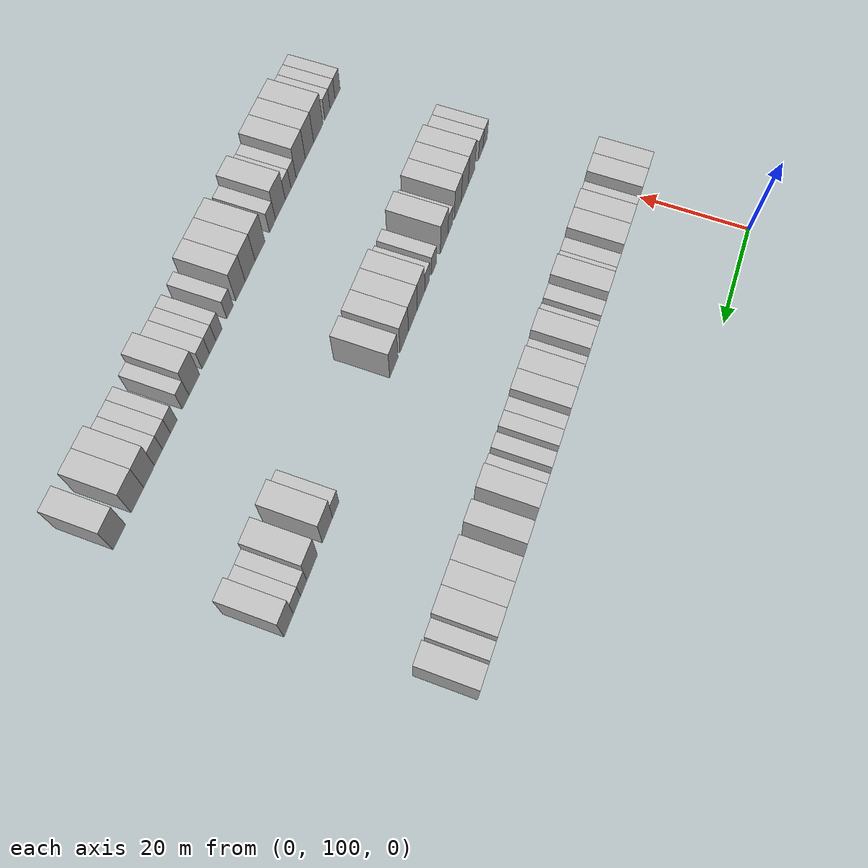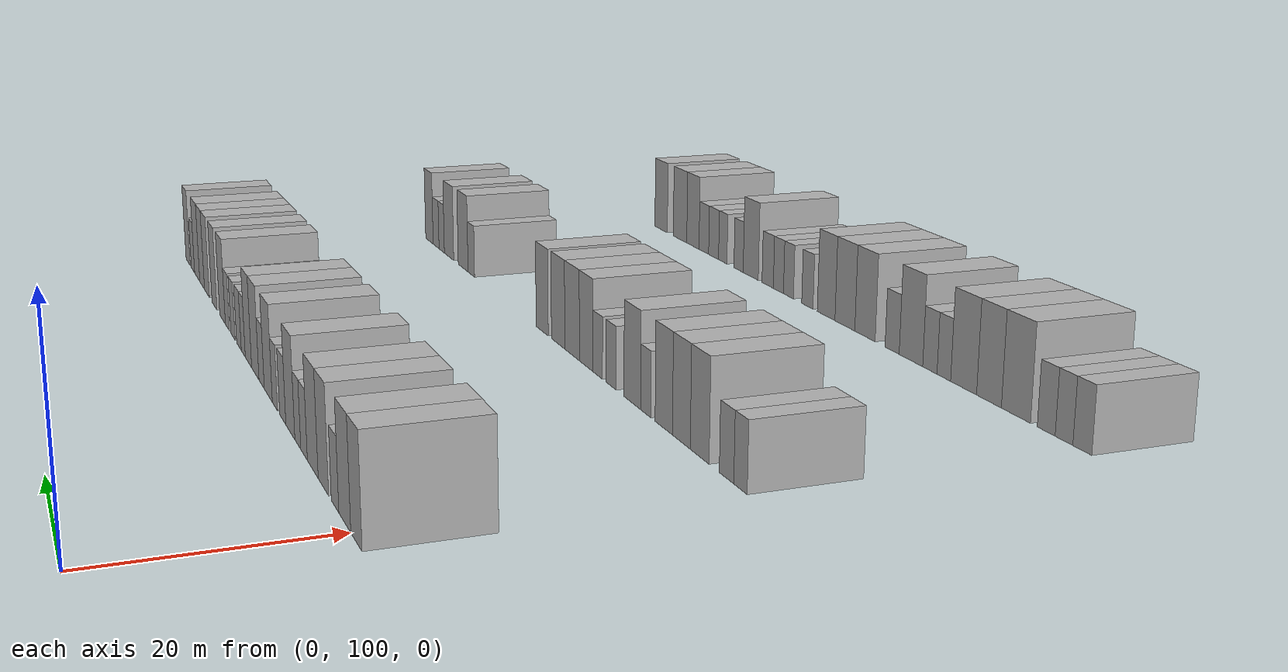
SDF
<sdf version="1.6">
 <world name="default">
  <model name="building_92">
   <static>1</static>
   <pose>25.0000 98.2462 0 0.000000 0.000000 0.000000</pose>
   <link name="link">
    <pose>0 0 4.50 0 0 0</pose>
    <collision name="collision"><geometry><box><size>10.0000 3.6863 9.0000</size></box></geometry></collision>
    <visual name="visual">
     <cast_shadows>0</cast_shadows>
     <geometry><box><size>10.0000 3.6863 9.0000</size></box></geometry>
     <material>
      <script>
       <uri>model://HANNAS_wall/materials/scripts</uri>
       <uri>model://HANNAS_wall/materials/textures</uri>
       <name>vrc/HANNAS_wall</name>
      </script>
     </material>
    </visual>
   </link>
  </model>
  <model name="building_93">
   <static>1</static>
   <pose>25.0000 102.1440 0 0.000000 0.000000 0.000000</pose>
   <link name="link">
    <pose>0 0 4.50 0 0 0</pose>
    <collision name="collision"><geometry><box><size>10.0000 4.1093 9.0000</size></box></geometry></collision>
    <visual name="visual">
     <cast_shadows>0</cast_shadows>
     <geometry><box><size>10.0000 4.1093 9.0000</size></box></geometry>
     <material>
      <script>
       <uri>model://HANNAS_wall/materials/scripts</uri>
       <uri>model://HANNAS_wall/materials/textures</uri>
       <name>vrc/HANNAS_wall</name>
      </script>
     </material>
    </visual>
   </link>
  </model>
  <model name="building_94">
   <static>1</static>
   <pose>25.0000 105.5680 0 0.000000 0.000000 0.000000</pose>
   <link name="link">
    <pose>0 0 3.00 0 0 0</pose>
    <collision name="collision"><geometry><box><size>10.0000 2.7387 6.0000</size></box></geometry></collision>
    <visual name="visual">
     <cast_shadows>0</cast_shadows>
     <geometry><box><size>10.0000 2.7387 6.0000</size></box></geometry>
     <material>
      <script>
       <uri>model://HANNAS_wall/materials/scripts</uri>
       <uri>model://HANNAS_wall/materials/textures</uri>
       <name>vrc/HANNAS_wall</name>
      </script>
     </material>
    </visual>
   </link>
  </model>
  <model name="building_95">
   <static>1</static>
   <pose>25.0000 109.9369 0 0.000000 0.000000 0.000000</pose>
   <link name="link">
    <pose>0 0 4.50 0 0 0</pose>
    <collision name="collision"><geometry><box><size>10.0000 3.9989 9.0000</size></box></geometry></collision>
    <visual name="visual">
     <cast_shadows>0</cast_shadows>
     <geometry><box><size>10.0000 3.9989 9.0000</size></box></geometry>
     <material>
      <script>
       <uri>model://HANNAS_wall/materials/scripts</uri>
       <uri>model://HANNAS_wall/materials/textures</uri>
       <name>vrc/HANNAS_wall</name>
      </script>
     </material>
    </visual>
   </link>
  </model>
  <model name="building_96">
   <static>1</static>
   <pose>25.0000 114.1396 0 0.000000 0.000000 0.000000</pose>
   <link name="link">
    <pose>0 0 4.50 0 0 0</pose>
    <collision name="collision"><geometry><box><size>10.0000 4.4066 9.0000</size></box></geometry></collision>
    <visual name="visual">
     <cast_shadows>0</cast_shadows>
     <geometry><box><size>10.0000 4.4066 9.0000</size></box></geometry>
     <material>
      <script>
       <uri>model://HANNAS_wall/materials/scripts</uri>
       <uri>model://HANNAS_wall/materials/textures</uri>
       <name>vrc/HANNAS_wall</name>
      </script>
     </material>
    </visual>
   </link>
  </model>
  <model name="building_97">
   <static>1</static>
   <pose>25.0000 117.7361 0 0.000000 0.000000 0.000000</pose>
   <link name="link">
    <pose>0 0 3.00 0 0 0</pose>
    <collision name="collision"><geometry><box><size>10.0000 2.7865 6.0000</size></box></geometry></collision>
    <visual name="visual">
     <cast_shadows>0</cast_shadows>
     <geometry><box><size>10.0000 2.7865 6.0000</size></box></geometry>
     <material>
      <script>
       <uri>model://HANNAS_wall/materials/scripts</uri>
       <uri>model://HANNAS_wall/materials/textures</uri>
       <name>vrc/HANNAS_wall</name>
      </script>
     </material>
    </visual>
   </link>
  </model>
  <model name="building_98">
   <static>1</static>
   <pose>25.0000 120.4450 0 0.000000 0.000000 0.000000</pose>
   <link name="link">
    <pose>0 0 3.00 0 0 0</pose>
    <collision name="collision"><geometry><box><size>10.0000 2.6313 6.0000</size></box></geometry></collision>
    <visual name="visual">
     <cast_shadows>0</cast_shadows>
     <geometry><box><size>10.0000 2.6313 6.0000</size></box></geometry>
     <material>
      <script>
       <uri>model://HANNAS_wall/materials/scripts</uri>
       <uri>model://HANNAS_wall/materials/textures</uri>
       <name>vrc/HANNAS_wall</name>
      </script>
     </material>
    </visual>
   </link>
  </model>
  <model name="building_99">
   <static>1</static>
   <pose>25.0000 123.8416 0 0.000000 0.000000 0.000000</pose>
   <link name="link">
    <pose>0 0 4.50 0 0 0</pose>
    <collision name="collision"><geometry><box><size>10.0000 4.1619 9.0000</size></box></geometry></collision>
    <visual name="visual">
     <cast_shadows>0</cast_shadows>
     <geometry><box><size>10.0000 4.1619 9.0000</size></box></geometry>
     <material>
      <script>
       <uri>model://HANNAS_wall/materials/scripts</uri>
       <uri>model://HANNAS_wall/materials/textures</uri>
       <name>vrc/HANNAS_wall</name>
      </script>
     </material>
    </visual>
   </link>
  </model>
  <model name="building_100">
   <static>1</static>
   <pose>25.0000 127.4074 0 0.000000 0.000000 0.000000</pose>
   <link name="link">
    <pose>0 0 3.00 0 0 0</pose>
    <collision name="collision"><geometry><box><size>10.0000 2.9698 6.0000</size></box></geometry></collision>
    <visual name="visual">
     <cast_shadows>0</cast_shadows>
     <geometry><box><size>10.0000 2.9698 6.0000</size></box></geometry>
     <material>
      <script>
       <uri>model://HANNAS_wall/materials/scripts</uri>
       <uri>model://HANNAS_wall/materials/textures</uri>
       <name>vrc/HANNAS_wall</name>
      </script>
     </material>
    </visual>
   </link>
  </model>
  <model name="building_101">
   <static>1</static>
   <pose>25.0000 131.2274 0 0.000000 0.000000 0.000000</pose>
   <link name="link">
    <pose>0 0 3.00 0 0 0</pose>
    <collision name="collision"><geometry><box><size>10.0000 2.6701 6.0000</size></box></geometry></collision>
    <visual name="visual">
     <cast_shadows>0</cast_shadows>
     <geometry><box><size>10.0000 2.6701 6.0000</size></box></geometry>
     <material>
      <script>
       <uri>model://HANNAS_wall/materials/scripts</uri>
       <uri>model://HANNAS_wall/materials/textures</uri>
       <name>vrc/HANNAS_wall</name>
      </script>
     </material>
    </visual>
   </link>
  </model>
  <model name="building_102">
   <static>1</static>
   <pose>25.0000 134.6650 0 0.000000 0.000000 0.000000</pose>
   <link name="link">
    <pose>0 0 4.50 0 0 0</pose>
    <collision name="collision"><geometry><box><size>10.0000 4.2051 9.0000</size></box></geometry></collision>
    <visual name="visual">
     <cast_shadows>0</cast_shadows>
     <geometry><box><size>10.0000 4.2051 9.0000</size></box></geometry>
     <material>
      <script>
       <uri>model://HANNAS_wall/materials/scripts</uri>
       <uri>model://HANNAS_wall/materials/textures</uri>
       <name>vrc/HANNAS_wall</name>
      </script>
     </material>
    </visual>
   </link>
  </model>
  <model name="building_103">
   <static>1</static>
   <pose>25.0000 138.2220 0 0.000000 0.000000 0.000000</pose>
   <link name="link">
    <pose>0 0 3.00 0 0 0</pose>
    <collision name="collision"><geometry><box><size>10.0000 2.9088 6.0000</size></box></geometry></collision>
    <visual name="visual">
     <cast_shadows>0</cast_shadows>
     <geometry><box><size>10.0000 2.9088 6.0000</size></box></geometry>
     <material>
      <script>
       <uri>model://HANNAS_wall/materials/scripts</uri>
       <uri>model://HANNAS_wall/materials/textures</uri>
       <name>vrc/HANNAS_wall</name>
      </script>
     </material>
    </visual>
   </link>
  </model>
  <model name="building_104">
   <static>1</static>
   <pose>25.0000 141.7715 0 0.000000 0.000000 0.000000</pose>
   <link name="link">
    <pose>0 0 4.50 0 0 0</pose>
    <collision name="collision"><geometry><box><size>10.0000 4.1902 9.0000</size></box></geometry></collision>
    <visual name="visual">
     <cast_shadows>0</cast_shadows>
     <geometry><box><size>10.0000 4.1902 9.0000</size></box></geometry>
     <material>
      <script>
       <uri>model://HANNAS_wall/materials/scripts</uri>
       <uri>model://HANNAS_wall/materials/textures</uri>
       <name>vrc/HANNAS_wall</name>
      </script>
     </material>
    </visual>
   </link>
  </model>
  <model name="building_105">
   <static>1</static>
   <pose>25.0000 145.7543 0 0.000000 0.000000 0.000000</pose>
   <link name="link">
    <pose>0 0 4.50 0 0 0</pose>
    <collision name="collision"><geometry><box><size>10.0000 3.7754 9.0000</size></box></geometry></collision>
    <visual name="visual">
     <cast_shadows>0</cast_shadows>
     <geometry><box><size>10.0000 3.7754 9.0000</size></box></geometry>
     <material>
      <script>
       <uri>model://HANNAS_wall/materials/scripts</uri>
       <uri>model://HANNAS_wall/materials/textures</uri>
       <name>vrc/HANNAS_wall</name>
      </script>
     </material>
    </visual>
   </link>
  </model>
  <model name="building_106">
   <static>1</static>
   <pose>25.0000 148.8828 0 0.000000 0.000000 0.000000</pose>
   <link name="link">
    <pose>0 0 3.00 0 0 0</pose>
    <collision name="collision"><geometry><box><size>10.0000 2.4815 6.0000</size></box></geometry></collision>
    <visual name="visual">
     <cast_shadows>0</cast_shadows>
     <geometry><box><size>10.0000 2.4815 6.0000</size></box></geometry>
     <material>
      <script>
       <uri>model://HANNAS_wall/materials/scripts</uri>
       <uri>model://HANNAS_wall/materials/textures</uri>
       <name>vrc/HANNAS_wall</name>
      </script>
     </material>
    </visual>
   </link>
  </model>
  <model name="building_107">
   <static>1</static>
   <pose>25.0000 151.5865 0 0.000000 0.000000 0.000000</pose>
   <link name="link">
    <pose>0 0 3.00 0 0 0</pose>
    <collision name="collision"><geometry><box><size>10.0000 2.9261 6.0000</size></box></geometry></collision>
    <visual name="visual">
     <cast_shadows>0</cast_shadows>
     <geometry><box><size>10.0000 2.9261 6.0000</size></box></geometry>
     <material>
      <script>
       <uri>model://HANNAS_wall/materials/scripts</uri>
       <uri>model://HANNAS_wall/materials/textures</uri>
       <name>vrc/HANNAS_wall</name>
      </script>
     </material>
    </visual>
   </link>
  </model>
  <model name="building_108">
   <static>1</static>
   <pose>25.0000 155.4279 0 0.000000 0.000000 0.000000</pose>
   <link name="link">
    <pose>0 0 3.00 0 0 0</pose>
    <collision name="collision"><geometry><box><size>10.0000 2.7566 6.0000</size></box></geometry></collision>
    <visual name="visual">
     <cast_shadows>0</cast_shadows>
     <geometry><box><size>10.0000 2.7566 6.0000</size></box></geometry>
     <material>
      <script>
       <uri>model://HANNAS_wall/materials/scripts</uri>
       <uri>model://HANNAS_wall/materials/textures</uri>
       <name>vrc/HANNAS_wall</name>
      </script>
     </material>
    </visual>
   </link>
  </model>
  <model name="building_109">
   <static>1</static>
   <pose>25.0000 159.2056 0 0.000000 0.000000 0.000000</pose>
   <link name="link">
    <pose>0 0 3.00 0 0 0</pose>
    <collision name="collision"><geometry><box><size>10.0000 2.7988 6.0000</size></box></geometry></collision>
    <visual name="visual">
     <cast_shadows>0</cast_shadows>
     <geometry><box><size>10.0000 2.7988 6.0000</size></box></geometry>
     <material>
      <script>
       <uri>model://HANNAS_wall/materials/scripts</uri>
       <uri>model://HANNAS_wall/materials/textures</uri>
       <name>vrc/HANNAS_wall</name>
      </script>
     </material>
    </visual>
   </link>
  </model>
  <model name="building_110">
   <static>1</static>
   <pose>25.0000 162.6018 0 0.000000 0.000000 0.000000</pose>
   <link name="link">
    <pose>0 0 4.50 0 0 0</pose>
    <collision name="collision"><geometry><box><size>10.0000 3.9937 9.0000</size></box></geometry></collision>
    <visual name="visual">
     <cast_shadows>0</cast_shadows>
     <geometry><box><size>10.0000 3.9937 9.0000</size></box></geometry>
     <material>
      <script>
       <uri>model://HANNAS_wall/materials/scripts</uri>
       <uri>model://HANNAS_wall/materials/textures</uri>
       <name>vrc/HANNAS_wall</name>
      </script>
     </material>
    </visual>
   </link>
  </model>
  <model name="building_111">
   <static>1</static>
   <pose>25.0000 168.4789 0 0.000000 0.000000 0.000000</pose>
   <link name="link">
    <pose>0 0 4.50 0 0 0</pose>
    <collision name="collision"><geometry><box><size>10.0000 3.7605 9.0000</size></box></geometry></collision>
    <visual name="visual">
     <cast_shadows>0</cast_shadows>
     <geometry><box><size>10.0000 3.7605 9.0000</size></box></geometry>
     <material>
      <script>
       <uri>model://HANNAS_wall/materials/scripts</uri>
       <uri>model://HANNAS_wall/materials/textures</uri>
       <name>vrc/HANNAS_wall</name>
      </script>
     </material>
    </visual>
   </link>
  </model>
  <model name="building_112">
   <static>1</static>
   <pose>25.0000 174.3198 0 0.000000 0.000000 0.000000</pose>
   <link name="link">
    <pose>0 0 4.50 0 0 0</pose>
    <collision name="collision"><geometry><box><size>10.0000 3.9211 9.0000</size></box></geometry></collision>
    <visual name="visual">
     <cast_shadows>0</cast_shadows>
     <geometry><box><size>10.0000 3.9211 9.0000</size></box></geometry>
     <material>
      <script>
       <uri>model://HANNAS_wall/materials/scripts</uri>
       <uri>model://HANNAS_wall/materials/textures</uri>
       <name>vrc/HANNAS_wall</name>
      </script>
     </material>
    </visual>
   </link>
  </model>
  <model name="building_113">
   <static>1</static>
   <pose>25.0000 178.2292 0 0.000000 0.000000 0.000000</pose>
   <link name="link">
    <pose>0 0 4.50 0 0 0</pose>
    <collision name="collision"><geometry><box><size>10.0000 3.8978 9.0000</size></box></geometry></collision>
    <visual name="visual">
     <cast_shadows>0</cast_shadows>
     <geometry><box><size>10.0000 3.8978 9.0000</size></box></geometry>
     <material>
      <script>
       <uri>model://HANNAS_wall/materials/scripts</uri>
       <uri>model://HANNAS_wall/materials/textures</uri>
       <name>vrc/HANNAS_wall</name>
      </script>
     </material>
    </visual>
   </link>
  </model>
  <model name="building_114">
   <static>1</static>
   <pose>25.0000 182.3680 0 0.000000 0.000000 0.000000</pose>
   <link name="link">
    <pose>0 0 4.50 0 0 0</pose>
    <collision name="collision"><geometry><box><size>10.0000 4.3797 9.0000</size></box></geometry></collision>
    <visual name="visual">
     <cast_shadows>0</cast_shadows>
     <geometry><box><size>10.0000 4.3797 9.0000</size></box></geometry>
     <material>
      <script>
       <uri>model://HANNAS_wall/materials/scripts</uri>
       <uri>model://HANNAS_wall/materials/textures</uri>
       <name>vrc/HANNAS_wall</name>
      </script>
     </material>
    </visual>
   </link>
  </model>
  <model name="building_115">
   <static>1</static>
   <pose>25.0000 186.0306 0 0.000000 0.000000 0.000000</pose>
   <link name="link">
    <pose>0 0 3.00 0 0 0</pose>
    <collision name="collision"><geometry><box><size>10.0000 2.9456 6.0000</size></box></geometry></collision>
    <visual name="visual">
     <cast_shadows>0</cast_shadows>
     <geometry><box><size>10.0000 2.9456 6.0000</size></box></geometry>
     <material>
      <script>
       <uri>model://HANNAS_wall/materials/scripts</uri>
       <uri>model://HANNAS_wall/materials/textures</uri>
       <name>vrc/HANNAS_wall</name>
      </script>
     </material>
    </visual>
   </link>
  </model>
  <model name="building_116">
   <static>1</static>
   <pose>25.0000 190.3924 0 0.000000 0.000000 0.000000</pose>
   <link name="link">
    <pose>0 0 4.50 0 0 0</pose>
    <collision name="collision"><geometry><box><size>10.0000 3.7781 9.0000</size></box></geometry></collision>
    <visual name="visual">
     <cast_shadows>0</cast_shadows>
     <geometry><box><size>10.0000 3.7781 9.0000</size></box></geometry>
     <material>
      <script>
       <uri>model://HANNAS_wall/materials/scripts</uri>
       <uri>model://HANNAS_wall/materials/textures</uri>
       <name>vrc/HANNAS_wall</name>
      </script>
     </material>
    </visual>
   </link>
  </model>
  <model name="building_225">
   <static>1</static>
   <pose>55.0000 98.4462 0 0.000000 0.000000 0.000000</pose>
   <link name="link">
    <pose>0 0 3.00 0 0 0</pose>
    <collision name="collision"><geometry><box><size>10.0000 2.4559 6.0000</size></box></geometry></collision>
    <visual name="visual">
     <cast_shadows>0</cast_shadows>
     <geometry><box><size>10.0000 2.4559 6.0000</size></box></geometry>
     <material>
      <script>
       <uri>model://HANNAS_wall/materials/scripts</uri>
       <uri>model://HANNAS_wall/materials/textures</uri>
       <name>vrc/HANNAS_wall</name>
      </script>
     </material>
    </visual>
   </link>
  </model>
  <model name="building_226">
   <static>1</static>
   <pose>55.0000 101.0471 0 0.000000 0.000000 0.000000</pose>
   <link name="link">
    <pose>0 0 3.00 0 0 0</pose>
    <collision name="collision"><geometry><box><size>10.0000 2.7459 6.0000</size></box></geometry></collision>
    <visual name="visual">
     <cast_shadows>0</cast_shadows>
     <geometry><box><size>10.0000 2.7459 6.0000</size></box></geometry>
     <material>
      <script>
       <uri>model://HANNAS_wall/materials/scripts</uri>
       <uri>model://HANNAS_wall/materials/textures</uri>
       <name>vrc/HANNAS_wall</name>
      </script>
     </material>
    </visual>
   </link>
  </model>
  <model name="building_227">
   <static>1</static>
   <pose>55.0000 106.3404 0 0.000000 0.000000 0.000000</pose>
   <link name="link">
    <pose>0 0 4.50 0 0 0</pose>
    <collision name="collision"><geometry><box><size>10.0000 3.8407 9.0000</size></box></geometry></collision>
    <visual name="visual">
     <cast_shadows>0</cast_shadows>
     <geometry><box><size>10.0000 3.8407 9.0000</size></box></geometry>
     <material>
      <script>
       <uri>model://HANNAS_wall/materials/scripts</uri>
       <uri>model://HANNAS_wall/materials/textures</uri>
       <name>vrc/HANNAS_wall</name>
      </script>
     </material>
    </visual>
   </link>
  </model>
  <model name="building_228">
   <static>1</static>
   <pose>55.0000 110.1692 0 0.000000 0.000000 0.000000</pose>
   <link name="link">
    <pose>0 0 4.50 0 0 0</pose>
    <collision name="collision"><geometry><box><size>10.0000 3.8169 9.0000</size></box></geometry></collision>
    <visual name="visual">
     <cast_shadows>0</cast_shadows>
     <geometry><box><size>10.0000 3.8169 9.0000</size></box></geometry>
     <material>
      <script>
       <uri>model://HANNAS_wall/materials/scripts</uri>
       <uri>model://HANNAS_wall/materials/textures</uri>
       <name>vrc/HANNAS_wall</name>
      </script>
     </material>
    </visual>
   </link>
  </model>
  <model name="building_229">
   <static>1</static>
   <pose>55.0000 114.0114 0 0.000000 0.000000 0.000000</pose>
   <link name="link">
    <pose>0 0 4.50 0 0 0</pose>
    <collision name="collision"><geometry><box><size>10.0000 3.8675 9.0000</size></box></geometry></collision>
    <visual name="visual">
     <cast_shadows>0</cast_shadows>
     <geometry><box><size>10.0000 3.8675 9.0000</size></box></geometry>
     <material>
      <script>
       <uri>model://HANNAS_wall/materials/scripts</uri>
       <uri>model://HANNAS_wall/materials/textures</uri>
       <name>vrc/HANNAS_wall</name>
      </script>
     </material>
    </visual>
   </link>
  </model>
  <model name="building_230">
   <static>1</static>
   <pose>55.0000 118.1484 0 0.000000 0.000000 0.000000</pose>
   <link name="link">
    <pose>0 0 3.00 0 0 0</pose>
    <collision name="collision"><geometry><box><size>10.0000 2.4064 6.0000</size></box></geometry></collision>
    <visual name="visual">
     <cast_shadows>0</cast_shadows>
     <geometry><box><size>10.0000 2.4064 6.0000</size></box></geometry>
     <material>
      <script>
       <uri>model://HANNAS_wall/materials/scripts</uri>
       <uri>model://HANNAS_wall/materials/textures</uri>
       <name>vrc/HANNAS_wall</name>
      </script>
     </material>
    </visual>
   </link>
  </model>
  <model name="building_231">
   <static>1</static>
   <pose>55.0000 121.3883 0 0.000000 0.000000 0.000000</pose>
   <link name="link">
    <pose>0 0 4.50 0 0 0</pose>
    <collision name="collision"><geometry><box><size>10.0000 4.0736 9.0000</size></box></geometry></collision>
    <visual name="visual">
     <cast_shadows>0</cast_shadows>
     <geometry><box><size>10.0000 4.0736 9.0000</size></box></geometry>
     <material>
      <script>
       <uri>model://HANNAS_wall/materials/scripts</uri>
       <uri>model://HANNAS_wall/materials/textures</uri>
       <name>vrc/HANNAS_wall</name>
      </script>
     </material>
    </visual>
   </link>
  </model>
  <model name="building_232">
   <static>1</static>
   <pose>55.0000 126.7086 0 0.000000 0.000000 0.000000</pose>
   <link name="link">
    <pose>0 0 3.00 0 0 0</pose>
    <collision name="collision"><geometry><box><size>10.0000 2.5669 6.0000</size></box></geometry></collision>
    <visual name="visual">
     <cast_shadows>0</cast_shadows>
     <geometry><box><size>10.0000 2.5669 6.0000</size></box></geometry>
     <material>
      <script>
       <uri>model://HANNAS_wall/materials/scripts</uri>
       <uri>model://HANNAS_wall/materials/textures</uri>
       <name>vrc/HANNAS_wall</name>
      </script>
     </material>
    </visual>
   </link>
  </model>
  <model name="building_233">
   <static>1</static>
   <pose>55.0000 130.2777 0 0.000000 0.000000 0.000000</pose>
   <link name="link">
    <pose>0 0 3.00 0 0 0</pose>
    <collision name="collision"><geometry><box><size>10.0000 2.5713 6.0000</size></box></geometry></collision>
    <visual name="visual">
     <cast_shadows>0</cast_shadows>
     <geometry><box><size>10.0000 2.5713 6.0000</size></box></geometry>
     <material>
      <script>
       <uri>model://HANNAS_wall/materials/scripts</uri>
       <uri>model://HANNAS_wall/materials/textures</uri>
       <name>vrc/HANNAS_wall</name>
      </script>
     </material>
    </visual>
   </link>
  </model>
  <model name="building_234">
   <static>1</static>
   <pose>55.0000 133.4779 0 0.000000 0.000000 0.000000</pose>
   <link name="link">
    <pose>0 0 4.50 0 0 0</pose>
    <collision name="collision"><geometry><box><size>10.0000 3.8293 9.0000</size></box></geometry></collision>
    <visual name="visual">
     <cast_shadows>0</cast_shadows>
     <geometry><box><size>10.0000 3.8293 9.0000</size></box></geometry>
     <material>
      <script>
       <uri>model://HANNAS_wall/materials/scripts</uri>
       <uri>model://HANNAS_wall/materials/textures</uri>
       <name>vrc/HANNAS_wall</name>
      </script>
     </material>
    </visual>
   </link>
  </model>
  <model name="building_235">
   <static>1</static>
   <pose>55.0000 137.5387 0 0.000000 0.000000 0.000000</pose>
   <link name="link">
    <pose>0 0 4.50 0 0 0</pose>
    <collision name="collision"><geometry><box><size>10.0000 4.2923 9.0000</size></box></geometry></collision>
    <visual name="visual">
     <cast_shadows>0</cast_shadows>
     <geometry><box><size>10.0000 4.2923 9.0000</size></box></geometry>
     <material>
      <script>
       <uri>model://HANNAS_wall/materials/scripts</uri>
       <uri>model://HANNAS_wall/materials/textures</uri>
       <name>vrc/HANNAS_wall</name>
      </script>
     </material>
    </visual>
   </link>
  </model>
  <model name="building_236">
   <static>1</static>
   <pose>55.0000 141.7364 0 0.000000 0.000000 0.000000</pose>
   <link name="link">
    <pose>0 0 4.50 0 0 0</pose>
    <collision name="collision"><geometry><box><size>10.0000 4.1030 9.0000</size></box></geometry></collision>
    <visual name="visual">
     <cast_shadows>0</cast_shadows>
     <geometry><box><size>10.0000 4.1030 9.0000</size></box></geometry>
     <material>
      <script>
       <uri>model://HANNAS_wall/materials/scripts</uri>
       <uri>model://HANNAS_wall/materials/textures</uri>
       <name>vrc/HANNAS_wall</name>
      </script>
     </material>
    </visual>
   </link>
  </model>
  <model name="building_237">
   <static>1</static>
   <pose>55.0000 146.7501 0 0.000000 0.000000 0.000000</pose>
   <link name="link">
    <pose>0 0 4.50 0 0 0</pose>
    <collision name="collision"><geometry><box><size>10.0000 3.9243 9.0000</size></box></geometry></collision>
    <visual name="visual">
     <cast_shadows>0</cast_shadows>
     <geometry><box><size>10.0000 3.9243 9.0000</size></box></geometry>
     <material>
      <script>
       <uri>model://HANNAS_wall/materials/scripts</uri>
       <uri>model://HANNAS_wall/materials/textures</uri>
       <name>vrc/HANNAS_wall</name>
      </script>
     </material>
    </visual>
   </link>
  </model>
  <model name="building_238">
   <static>1</static>
   <pose>55.0000 172.7889 0 0.000000 0.000000 0.000000</pose>
   <link name="link">
    <pose>0 0 3.00 0 0 0</pose>
    <collision name="collision"><geometry><box><size>10.0000 2.7178 6.0000</size></box></geometry></collision>
    <visual name="visual">
     <cast_shadows>0</cast_shadows>
     <geometry><box><size>10.0000 2.7178 6.0000</size></box></geometry>
     <material>
      <script>
       <uri>model://HANNAS_wall/materials/scripts</uri>
       <uri>model://HANNAS_wall/materials/textures</uri>
       <name>vrc/HANNAS_wall</name>
      </script>
     </material>
    </visual>
   </link>
  </model>
  <model name="building_239">
   <static>1</static>
   <pose>55.0000 176.2484 0 0.000000 0.000000 0.000000</pose>
   <link name="link">
    <pose>0 0 4.50 0 0 0</pose>
    <collision name="collision"><geometry><box><size>10.0000 4.2013 9.0000</size></box></geometry></collision>
    <visual name="visual">
     <cast_shadows>0</cast_shadows>
     <geometry><box><size>10.0000 4.2013 9.0000</size></box></geometry>
     <material>
      <script>
       <uri>model://HANNAS_wall/materials/scripts</uri>
       <uri>model://HANNAS_wall/materials/textures</uri>
       <name>vrc/HANNAS_wall</name>
      </script>
     </material>
    </visual>
   </link>
  </model>
  <model name="building_240">
   <static>1</static>
   <pose>55.0000 182.4731 0 0.000000 0.000000 0.000000</pose>
   <link name="link">
    <pose>0 0 4.50 0 0 0</pose>
    <collision name="collision"><geometry><box><size>10.0000 4.2481 9.0000</size></box></geometry></collision>
    <visual name="visual">
     <cast_shadows>0</cast_shadows>
     <geometry><box><size>10.0000 4.2481 9.0000</size></box></geometry>
     <material>
      <script>
       <uri>model://HANNAS_wall/materials/scripts</uri>
       <uri>model://HANNAS_wall/materials/textures</uri>
       <name>vrc/HANNAS_wall</name>
      </script>
     </material>
    </visual>
   </link>
  </model>
  <model name="building_241">
   <static>1</static>
   <pose>55.0000 185.8442 0 0.000000 0.000000 0.000000</pose>
   <link name="link">
    <pose>0 0 3.00 0 0 0</pose>
    <collision name="collision"><geometry><box><size>10.0000 2.4940 6.0000</size></box></geometry></collision>
    <visual name="visual">
     <cast_shadows>0</cast_shadows>
     <geometry><box><size>10.0000 2.4940 6.0000</size></box></geometry>
     <material>
      <script>
       <uri>model://HANNAS_wall/materials/scripts</uri>
       <uri>model://HANNAS_wall/materials/textures</uri>
       <name>vrc/HANNAS_wall</name>
      </script>
     </material>
    </visual>
   </link>
  </model>
  <model name="building_242">
   <static>1</static>
   <pose>55.0000 188.4919 0 0.000000 0.000000 0.000000</pose>
   <link name="link">
    <pose>0 0 3.00 0 0 0</pose>
    <collision name="collision"><geometry><box><size>10.0000 2.8014 6.0000</size></box></geometry></collision>
    <visual name="visual">
     <cast_shadows>0</cast_shadows>
     <geometry><box><size>10.0000 2.8014 6.0000</size></box></geometry>
     <material>
      <script>
       <uri>model://HANNAS_wall/materials/scripts</uri>
       <uri>model://HANNAS_wall/materials/textures</uri>
       <name>vrc/HANNAS_wall</name>
      </script>
     </material>
    </visual>
   </link>
  </model>
  <model name="building_243">
   <static>1</static>
   <pose>55.0000 191.7064 0 0.000000 0.000000 0.000000</pose>
   <link name="link">
    <pose>0 0 4.50 0 0 0</pose>
    <collision name="collision"><geometry><box><size>10.0000 3.6275 9.0000</size></box></geometry></collision>
    <visual name="visual">
     <cast_shadows>0</cast_shadows>
     <geometry><box><size>10.0000 3.6275 9.0000</size></box></geometry>
     <material>
      <script>
       <uri>model://HANNAS_wall/materials/scripts</uri>
       <uri>model://HANNAS_wall/materials/textures</uri>
       <name>vrc/HANNAS_wall</name>
      </script>
     </material>
    </visual>
   </link>
  </model>
  <model name="building_363">
   <static>1</static>
   <pose>85.0000 96.9276 0 0.000000 0.000000 0.000000</pose>
   <link name="link">
    <pose>0 0 3.00 0 0 0</pose>
    <collision name="collision"><geometry><box><size>10.0000 2.5934 6.0000</size></box></geometry></collision>
    <visual name="visual">
     <cast_shadows>0</cast_shadows>
     <geometry><box><size>10.0000 2.5934 6.0000</size></box></geometry>
     <material>
      <script>
       <uri>model://HANNAS_wall/materials/scripts</uri>
       <uri>model://HANNAS_wall/materials/textures</uri>
       <name>vrc/HANNAS_wall</name>
      </script>
     </material>
    </visual>
   </link>
  </model>
  <model name="building_364">
   <static>1</static>
   <pose>85.0000 99.4740 0 0.000000 0.000000 0.000000</pose>
   <link name="link">
    <pose>0 0 3.00 0 0 0</pose>
    <collision name="collision"><geometry><box><size>10.0000 2.4994 6.0000</size></box></geometry></collision>
    <visual name="visual">
     <cast_shadows>0</cast_shadows>
     <geometry><box><size>10.0000 2.4994 6.0000</size></box></geometry>
     <material>
      <script>
       <uri>model://HANNAS_wall/materials/scripts</uri>
       <uri>model://HANNAS_wall/materials/textures</uri>
       <name>vrc/HANNAS_wall</name>
      </script>
     </material>
    </visual>
   </link>
  </model>
  <model name="building_365">
   <static>1</static>
   <pose>85.0000 102.0286 0 0.000000 0.000000 0.000000</pose>
   <link name="link">
    <pose>0 0 3.00 0 0 0</pose>
    <collision name="collision"><geometry><box><size>10.0000 2.6097 6.0000</size></box></geometry></collision>
    <visual name="visual">
     <cast_shadows>0</cast_shadows>
     <geometry><box><size>10.0000 2.6097 6.0000</size></box></geometry>
     <material>
      <script>
       <uri>model://HANNAS_wall/materials/scripts</uri>
       <uri>model://HANNAS_wall/materials/textures</uri>
       <name>vrc/HANNAS_wall</name>
      </script>
     </material>
    </visual>
   </link>
  </model>
  <model name="building_366">
   <static>1</static>
   <pose>85.0000 106.5788 0 0.000000 0.000000 0.000000</pose>
   <link name="link">
    <pose>0 0 4.50 0 0 0</pose>
    <collision name="collision"><geometry><box><size>10.0000 4.4908 9.0000</size></box></geometry></collision>
    <visual name="visual">
     <cast_shadows>0</cast_shadows>
     <geometry><box><size>10.0000 4.4908 9.0000</size></box></geometry>
     <material>
      <script>
       <uri>model://HANNAS_wall/materials/scripts</uri>
       <uri>model://HANNAS_wall/materials/textures</uri>
       <name>vrc/HANNAS_wall</name>
      </script>
     </material>
    </visual>
   </link>
  </model>
  <model name="building_367">
   <static>1</static>
   <pose>85.0000 110.8342 0 0.000000 0.000000 0.000000</pose>
   <link name="link">
    <pose>0 0 4.50 0 0 0</pose>
    <collision name="collision"><geometry><box><size>10.0000 4.0201 9.0000</size></box></geometry></collision>
    <visual name="visual">
     <cast_shadows>0</cast_shadows>
     <geometry><box><size>10.0000 4.0201 9.0000</size></box></geometry>
     <material>
      <script>
       <uri>model://HANNAS_wall/materials/scripts</uri>
       <uri>model://HANNAS_wall/materials/textures</uri>
       <name>vrc/HANNAS_wall</name>
      </script>
     </material>
    </visual>
   </link>
  </model>
  <model name="building_368">
   <static>1</static>
   <pose>85.0000 115.0541 0 0.000000 0.000000 0.000000</pose>
   <link name="link">
    <pose>0 0 4.50 0 0 0</pose>
    <collision name="collision"><geometry><box><size>10.0000 4.4196 9.0000</size></box></geometry></collision>
    <visual name="visual">
     <cast_shadows>0</cast_shadows>
     <geometry><box><size>10.0000 4.4196 9.0000</size></box></geometry>
     <material>
      <script>
       <uri>model://HANNAS_wall/materials/scripts</uri>
       <uri>model://HANNAS_wall/materials/textures</uri>
       <name>vrc/HANNAS_wall</name>
      </script>
     </material>
    </visual>
   </link>
  </model>
  <model name="building_369">
   <static>1</static>
   <pose>85.0000 118.4673 0 0.000000 0.000000 0.000000</pose>
   <link name="link">
    <pose>0 0 3.00 0 0 0</pose>
    <collision name="collision"><geometry><box><size>10.0000 2.4068 6.0000</size></box></geometry></collision>
    <visual name="visual">
     <cast_shadows>0</cast_shadows>
     <geometry><box><size>10.0000 2.4068 6.0000</size></box></geometry>
     <material>
      <script>
       <uri>model://HANNAS_wall/materials/scripts</uri>
       <uri>model://HANNAS_wall/materials/textures</uri>
       <name>vrc/HANNAS_wall</name>
      </script>
     </material>
    </visual>
   </link>
  </model>
  <model name="building_370">
   <static>1</static>
   <pose>85.0000 120.9732 0 0.000000 0.000000 0.000000</pose>
   <link name="link">
    <pose>0 0 3.00 0 0 0</pose>
    <collision name="collision"><geometry><box><size>10.0000 2.6051 6.0000</size></box></geometry></collision>
    <visual name="visual">
     <cast_shadows>0</cast_shadows>
     <geometry><box><size>10.0000 2.6051 6.0000</size></box></geometry>
     <material>
      <script>
       <uri>model://HANNAS_wall/materials/scripts</uri>
       <uri>model://HANNAS_wall/materials/textures</uri>
       <name>vrc/HANNAS_wall</name>
      </script>
     </material>
    </visual>
   </link>
  </model>
  <model name="building_371">
   <static>1</static>
   <pose>85.0000 124.5020 0 0.000000 0.000000 0.000000</pose>
   <link name="link">
    <pose>0 0 4.50 0 0 0</pose>
    <collision name="collision"><geometry><box><size>10.0000 4.4524 9.0000</size></box></geometry></collision>
    <visual name="visual">
     <cast_shadows>0</cast_shadows>
     <geometry><box><size>10.0000 4.4524 9.0000</size></box></geometry>
     <material>
      <script>
       <uri>model://HANNAS_wall/materials/scripts</uri>
       <uri>model://HANNAS_wall/materials/textures</uri>
       <name>vrc/HANNAS_wall</name>
      </script>
     </material>
    </visual>
   </link>
  </model>
  <model name="building_372">
   <static>1</static>
   <pose>85.0000 128.1152 0 0.000000 0.000000 0.000000</pose>
   <link name="link">
    <pose>0 0 3.00 0 0 0</pose>
    <collision name="collision"><geometry><box><size>10.0000 2.7740 6.0000</size></box></geometry></collision>
    <visual name="visual">
     <cast_shadows>0</cast_shadows>
     <geometry><box><size>10.0000 2.7740 6.0000</size></box></geometry>
     <material>
      <script>
       <uri>model://HANNAS_wall/materials/scripts</uri>
       <uri>model://HANNAS_wall/materials/textures</uri>
       <name>vrc/HANNAS_wall</name>
      </script>
     </material>
    </visual>
   </link>
  </model>
  <model name="building_373">
   <static>1</static>
   <pose>85.0000 133.6269 0 0.000000 0.000000 0.000000</pose>
   <link name="link">
    <pose>0 0 4.50 0 0 0</pose>
    <collision name="collision"><geometry><box><size>10.0000 4.2493 9.0000</size></box></geometry></collision>
    <visual name="visual">
     <cast_shadows>0</cast_shadows>
     <geometry><box><size>10.0000 4.2493 9.0000</size></box></geometry>
     <material>
      <script>
       <uri>model://HANNAS_wall/materials/scripts</uri>
       <uri>model://HANNAS_wall/materials/textures</uri>
       <name>vrc/HANNAS_wall</name>
      </script>
     </material>
    </visual>
   </link>
  </model>
  <model name="building_374">
   <static>1</static>
   <pose>85.0000 137.9146 0 0.000000 0.000000 0.000000</pose>
   <link name="link">
    <pose>0 0 4.50 0 0 0</pose>
    <collision name="collision"><geometry><box><size>10.0000 4.3261 9.0000</size></box></geometry></collision>
    <visual name="visual">
     <cast_shadows>0</cast_shadows>
     <geometry><box><size>10.0000 4.3261 9.0000</size></box></geometry>
     <material>
      <script>
       <uri>model://HANNAS_wall/materials/scripts</uri>
       <uri>model://HANNAS_wall/materials/textures</uri>
       <name>vrc/HANNAS_wall</name>
      </script>
     </material>
    </visual>
   </link>
  </model>
  <model name="building_375">
   <static>1</static>
   <pose>85.0000 142.0823 0 0.000000 0.000000 0.000000</pose>
   <link name="link">
    <pose>0 0 4.50 0 0 0</pose>
    <collision name="collision"><geometry><box><size>10.0000 4.0094 9.0000</size></box></geometry></collision>
    <visual name="visual">
     <cast_shadows>0</cast_shadows>
     <geometry><box><size>10.0000 4.0094 9.0000</size></box></geometry>
     <material>
      <script>
       <uri>model://HANNAS_wall/materials/scripts</uri>
       <uri>model://HANNAS_wall/materials/textures</uri>
       <name>vrc/HANNAS_wall</name>
      </script>
     </material>
    </visual>
   </link>
  </model>
  <model name="building_376">
   <static>1</static>
   <pose>85.0000 146.4305 0 0.000000 0.000000 0.000000</pose>
   <link name="link">
    <pose>0 0 3.00 0 0 0</pose>
    <collision name="collision"><geometry><box><size>10.0000 2.6869 6.0000</size></box></geometry></collision>
    <visual name="visual">
     <cast_shadows>0</cast_shadows>
     <geometry><box><size>10.0000 2.6869 6.0000</size></box></geometry>
     <material>
      <script>
       <uri>model://HANNAS_wall/materials/scripts</uri>
       <uri>model://HANNAS_wall/materials/textures</uri>
       <name>vrc/HANNAS_wall</name>
      </script>
     </material>
    </visual>
   </link>
  </model>
  <model name="building_377">
   <static>1</static>
   <pose>85.0000 151.0142 0 0.000000 0.000000 0.000000</pose>
   <link name="link">
    <pose>0 0 3.00 0 0 0</pose>
    <collision name="collision"><geometry><box><size>10.0000 2.4806 6.0000</size></box></geometry></collision>
    <visual name="visual">
     <cast_shadows>0</cast_shadows>
     <geometry><box><size>10.0000 2.4806 6.0000</size></box></geometry>
     <material>
      <script>
       <uri>model://HANNAS_wall/materials/scripts</uri>
       <uri>model://HANNAS_wall/materials/textures</uri>
       <name>vrc/HANNAS_wall</name>
      </script>
     </material>
    </visual>
   </link>
  </model>
  <model name="building_378">
   <static>1</static>
   <pose>85.0000 153.5389 0 0.000000 0.000000 0.000000</pose>
   <link name="link">
    <pose>0 0 3.00 0 0 0</pose>
    <collision name="collision"><geometry><box><size>10.0000 2.5688 6.0000</size></box></geometry></collision>
    <visual name="visual">
     <cast_shadows>0</cast_shadows>
     <geometry><box><size>10.0000 2.5688 6.0000</size></box></geometry>
     <material>
      <script>
       <uri>model://HANNAS_wall/materials/scripts</uri>
       <uri>model://HANNAS_wall/materials/textures</uri>
       <name>vrc/HANNAS_wall</name>
      </script>
     </material>
    </visual>
   </link>
  </model>
  <model name="building_379">
   <static>1</static>
   <pose>85.0000 156.2960 0 0.000000 0.000000 0.000000</pose>
   <link name="link">
    <pose>0 0 3.00 0 0 0</pose>
    <collision name="collision"><geometry><box><size>10.0000 2.9454 6.0000</size></box></geometry></collision>
    <visual name="visual">
     <cast_shadows>0</cast_shadows>
     <geometry><box><size>10.0000 2.9454 6.0000</size></box></geometry>
     <material>
      <script>
       <uri>model://HANNAS_wall/materials/scripts</uri>
       <uri>model://HANNAS_wall/materials/textures</uri>
       <name>vrc/HANNAS_wall</name>
      </script>
     </material>
    </visual>
   </link>
  </model>
  <model name="building_380">
   <static>1</static>
   <pose>85.0000 160.8169 0 0.000000 0.000000 0.000000</pose>
   <link name="link">
    <pose>0 0 4.50 0 0 0</pose>
    <collision name="collision"><geometry><box><size>10.0000 4.0963 9.0000</size></box></geometry></collision>
    <visual name="visual">
     <cast_shadows>0</cast_shadows>
     <geometry><box><size>10.0000 4.0963 9.0000</size></box></geometry>
     <material>
      <script>
       <uri>model://HANNAS_wall/materials/scripts</uri>
       <uri>model://HANNAS_wall/materials/textures</uri>
       <name>vrc/HANNAS_wall</name>
      </script>
     </material>
    </visual>
   </link>
  </model>
  <model name="building_381">
   <static>1</static>
   <pose>85.0000 164.1521 0 0.000000 0.000000 0.000000</pose>
   <link name="link">
    <pose>0 0 3.00 0 0 0</pose>
    <collision name="collision"><geometry><box><size>10.0000 2.5741 6.0000</size></box></geometry></collision>
    <visual name="visual">
     <cast_shadows>0</cast_shadows>
     <geometry><box><size>10.0000 2.5741 6.0000</size></box></geometry>
     <material>
      <script>
       <uri>model://HANNAS_wall/materials/scripts</uri>
       <uri>model://HANNAS_wall/materials/textures</uri>
       <name>vrc/HANNAS_wall</name>
      </script>
     </material>
    </visual>
   </link>
  </model>
  <model name="building_382">
   <static>1</static>
   <pose>85.0000 168.6631 0 0.000000 0.000000 0.000000</pose>
   <link name="link">
    <pose>0 0 3.00 0 0 0</pose>
    <collision name="collision"><geometry><box><size>10.0000 2.4479 6.0000</size></box></geometry></collision>
    <visual name="visual">
     <cast_shadows>0</cast_shadows>
     <geometry><box><size>10.0000 2.4479 6.0000</size></box></geometry>
     <material>
      <script>
       <uri>model://HANNAS_wall/materials/scripts</uri>
       <uri>model://HANNAS_wall/materials/textures</uri>
       <name>vrc/HANNAS_wall</name>
      </script>
     </material>
    </visual>
   </link>
  </model>
  <model name="building_383">
   <static>1</static>
   <pose>85.0000 171.3659 0 0.000000 0.000000 0.000000</pose>
   <link name="link">
    <pose>0 0 3.00 0 0 0</pose>
    <collision name="collision"><geometry><box><size>10.0000 2.9578 6.0000</size></box></geometry></collision>
    <visual name="visual">
     <cast_shadows>0</cast_shadows>
     <geometry><box><size>10.0000 2.9578 6.0000</size></box></geometry>
     <material>
      <script>
       <uri>model://HANNAS_wall/materials/scripts</uri>
       <uri>model://HANNAS_wall/materials/textures</uri>
       <name>vrc/HANNAS_wall</name>
      </script>
     </material>
    </visual>
   </link>
  </model>
  <model name="building_384">
   <static>1</static>
   <pose>85.0000 174.3142 0 0.000000 0.000000 0.000000</pose>
   <link name="link">
    <pose>0 0 3.00 0 0 0</pose>
    <collision name="collision"><geometry><box><size>10.0000 2.9388 6.0000</size></box></geometry></collision>
    <visual name="visual">
     <cast_shadows>0</cast_shadows>
     <geometry><box><size>10.0000 2.9388 6.0000</size></box></geometry>
     <material>
      <script>
       <uri>model://HANNAS_wall/materials/scripts</uri>
       <uri>model://HANNAS_wall/materials/textures</uri>
       <name>vrc/HANNAS_wall</name>
      </script>
     </material>
    </visual>
   </link>
  </model>
  <model name="building_385">
   <static>1</static>
   <pose>85.0000 177.7170 0 0.000000 0.000000 0.000000</pose>
   <link name="link">
    <pose>0 0 4.50 0 0 0</pose>
    <collision name="collision"><geometry><box><size>10.0000 3.8667 9.0000</size></box></geometry></collision>
    <visual name="visual">
     <cast_shadows>0</cast_shadows>
     <geometry><box><size>10.0000 3.8667 9.0000</size></box></geometry>
     <material>
      <script>
       <uri>model://HANNAS_wall/materials/scripts</uri>
       <uri>model://HANNAS_wall/materials/textures</uri>
       <name>vrc/HANNAS_wall</name>
      </script>
     </material>
    </visual>
   </link>
  </model>
  <model name="building_386">
   <static>1</static>
   <pose>85.0000 181.8330 0 0.000000 0.000000 0.000000</pose>
   <link name="link">
    <pose>0 0 4.50 0 0 0</pose>
    <collision name="collision"><geometry><box><size>10.0000 4.3654 9.0000</size></box></geometry></collision>
    <visual name="visual">
     <cast_shadows>0</cast_shadows>
     <geometry><box><size>10.0000 4.3654 9.0000</size></box></geometry>
     <material>
      <script>
       <uri>model://HANNAS_wall/materials/scripts</uri>
       <uri>model://HANNAS_wall/materials/textures</uri>
       <name>vrc/HANNAS_wall</name>
      </script>
     </material>
    </visual>
   </link>
  </model>
  <model name="building_387">
   <static>1</static>
   <pose>85.0000 188.1411 0 0.000000 0.000000 0.000000</pose>
   <link name="link">
    <pose>0 0 4.50 0 0 0</pose>
    <collision name="collision"><geometry><box><size>10.0000 4.2509 9.0000</size></box></geometry></collision>
    <visual name="visual">
     <cast_shadows>0</cast_shadows>
     <geometry><box><size>10.0000 4.2509 9.0000</size></box></geometry>
     <material>
      <script>
       <uri>model://HANNAS_wall/materials/scripts</uri>
       <uri>model://HANNAS_wall/materials/textures</uri>
       <name>vrc/HANNAS_wall</name>
      </script>
     </material>
    </visual>
   </link>
  </model>
 </world>
</sdf>
